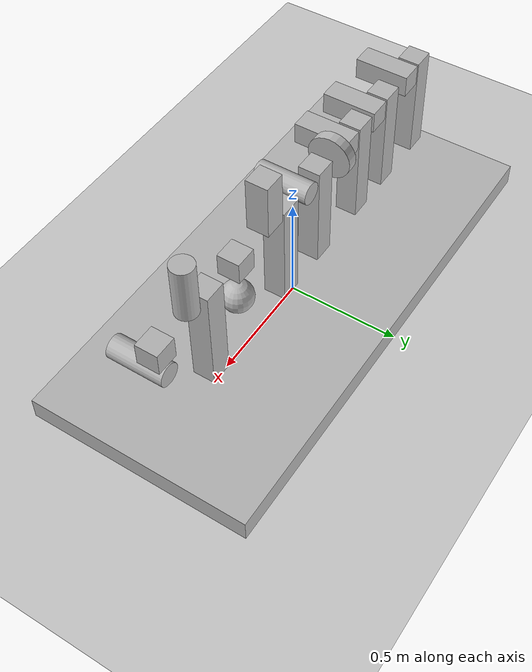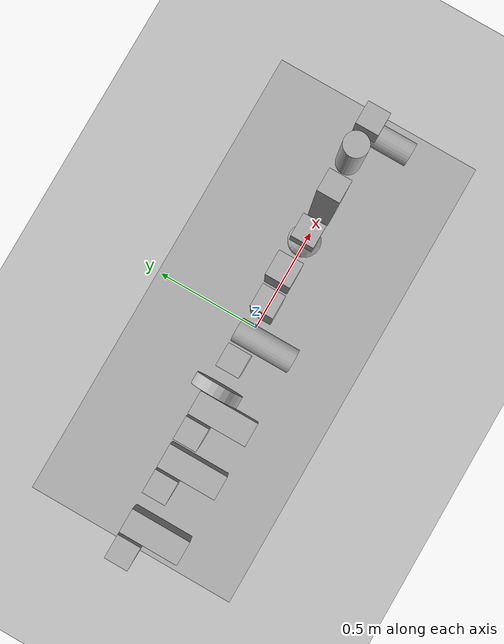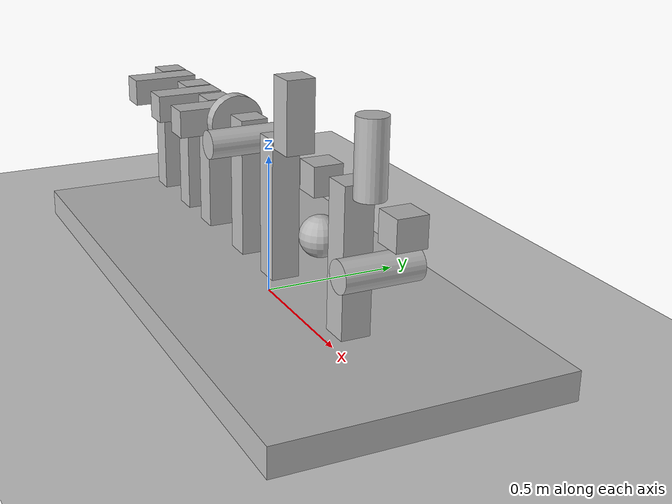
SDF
<?xml version="1.0" ?>
<sdf version="1.5">
  <world name="default">
    <!-- A global light source -->
    <include>
      <uri>model://sun</uri>
    </include>
    <!-- A ground plane -->
    <include>
      <uri>model://ground_plane</uri>
    </include>

    <!-- A testing model that includes the VT_sim sensor model -->
    <model name="Demo joint types">
      <include>
        <uri>model://demo_joint_types</uri>
      </include>

      <!-- Attach the plugin to this model -->
      <plugin name="VT_sim_control" filename="libget_joints_plugin.so"/>
    </model>

  </world>
</sdf>

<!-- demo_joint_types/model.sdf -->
<sdf version="1.6">
    <model name="demo_joint_types">
        <!-- A Heavy base keeps the joints from falling over -->
        <link name="heavy_base">
            <!-- position the base such that the bottom touches the floor -->
            <pose>0 0 0.05 0 0 0</pose>
            <inertial>
                <mass>100</mass> <!-- kg -->
                <inertia>
                    <!-- (mass / 12) * (y*y + z*z) -->
                    <ixx>8.4167</ixx>
                    <ixy>0</ixy>
                    <ixz>0</ixz>
                    <!-- (mass / 12) * (x*x + z*z) -->
                    <iyy>40.417</iyy>
                    <iyz>0</iyz>
                    <!-- (mass / 12) * (y*y + x*x) -->
                    <izz>48.667</izz>
                </inertia>
            </inertial>
            <!-- Same geometry as visual -->
            <collision name="heavy_base_collision">
                <geometry>
                    <box>
                        <size>2.2 1 0.1</size>
                    </box>
                </geometry>
            </collision>
            <!-- Same geometry as collision -->
            <visual name="heavy_base_visual">
                <geometry>
                    <box>
                        <size>2.2 1 0.1</size>
                    </box>
                </geometry>
                <material>
                    <script>
                        <uri>model://../model_source/models/demo_joint_types/materials/scripts</uri>
                        <uri>model://../model_source/models/demo_joint_types/materials/textures</uri>
                        <name>demo_joint_types/legend</name>
                    </script>
                </material>
            </visual>
        </link>

        <!-- ****************************************
             revolute joint demo
             **************************************** -->
        <link name="revolute_base">
            <!-- Put the bottom of the child on top of the parent
                 z = 0.5 * revolute_base_sz_z + heavy_base_sz_z
                 x = put it near revolute label on heavy base
                 -->
            <pose >-.72 0 0.35 0 0 0</pose>
            <inertial>
                <inertia>
                    <!-- (mass / 12) * (y*y + z*z) -->
                    <ixx>0.021667</ixx>
                    <ixy>0</ixy>
                    <ixz>0</ixz>
                    <!-- (mass / 12) * (x*x + z*z) -->
                    <iyy>0.021667</iyy>
                    <iyz>0</iyz>
                    <!-- (mass / 12) * (y*y + x*x) -->
                    <izz>0.0016667</izz>
                </inertia>
            </inertial>
            <!-- Same geometry as visual -->
            <collision name="revolute_base_collision">
                <geometry>
                    <box>
                        <size>0.1 0.1 0.5</size>
                    </box>
                </geometry>
            </collision>
            <!-- Same geometry as collision -->
            <visual name="revolute_base_visual">
                <geometry>
                    <box>
                        <size>0.1 0.1 0.5</size>
                    </box>
                </geometry>
                <material>
                    <script>
                        <uri>model://../model_source/models/demo_joint_types/materials/scripts</uri>
                        <uri>model://../model_source/models/demo_joint_types/materials/textures</uri>
                        <name>demo_joint_types/parent</name>
                    </script>
                </material>
            </visual>
        </link>

        <joint name="revolute_base_to_heavy_base" type="fixed">
            <parent>heavy_base</parent>
            <child>revolute_base</child>
        </joint>

        <link name="revolute_arm">
            <pose >-.61 -0.075 0.55 0 0 0</pose>
            <inertial>
                <inertia>
                    <!-- (mass / 12) * (y*y + z*z) -->
                    <ixx>0.0060417</ixx>
                    <ixy>0</ixy>
                    <ixz>0</ixz>
                    <!-- (mass / 12) * (x*x + z*z) -->
                    <iyy>0.0016667</iyy>
                    <iyz>0</iyz>
                    <!-- (mass / 12) * (y*y + x*x) -->
                    <izz>0.0060417</izz>
                </inertia>
            </inertial>
            <!-- Same geometry as visual -->
            <collision name="revolute_arm_collision">
                <geometry>
                    <box>
                        <size>0.1 0.25 0.1</size>
                    </box>
                </geometry>
            </collision>
            <!-- Same geometry as collision -->
            <visual name="revolute_arm_visual">
                <geometry>
                    <box>
                        <size>0.1 0.25 0.1</size>
                    </box>
                </geometry>
                <material>
                    <script>
                        <uri>model://../model_source/models/demo_joint_types/materials/scripts</uri>
                        <uri>model://../model_source/models/demo_joint_types/materials/textures</uri>
                        <name>demo_joint_types/child</name>
                    </script>
                </material>
            </visual>
        </link>

        <joint name="revolute_demo" type="revolute">
            <parent>revolute_base</parent>
            <child>revolute_arm</child>
            <axis>
                <xyz>1 0 0</xyz>
            </axis>
            <!-- Move the joint to the size a bit to be more like an arm
                 y = 0.5 * relative_arm_sz_y - fudge(0.05) -->
            <pose>0 0.075 0 0 0 0</pose>
        </joint>

        <!-- ****************************************
             gearbox joint demo
             **************************************** -->
        <link name="gearbox_base">
            <!-- Put the bottom of the child on top of the parent
                 z = 0.5 * gearbox_base_sz_z + heavy_base_sz_z
                 x = put it near gearbox label on heavy base
                 -->
            <pose >-.49 0 0.35 0 0 0</pose>
            <inertial>
                <inertia>
                    <!-- (mass / 12) * (y*y + z*z) -->
                    <ixx>0.021667</ixx>
                    <ixy>0</ixy>
                    <ixz>0</ixz>
                    <!-- (mass / 12) * (x*x + z*z) -->
                    <iyy>0.021667</iyy>
                    <iyz>0</iyz>
                    <!-- (mass / 12) * (y*y + x*x) -->
                    <izz>0.0016667</izz>
                </inertia>
            </inertial>
            <!-- Same geometry as visual -->
            <collision name="gearbox_base_collision">
                <geometry>
                    <box>
                        <size>0.1 0.1 0.5</size>
                    </box>
                </geometry>
            </collision>
            <!-- Same geometry as collision -->
            <visual name="gearbox_base_visual">
                <geometry>
                    <box>
                        <size>0.1 0.1 0.5</size>
                    </box>
                </geometry>
                <material>
                    <script>
                        <uri>model://../model_source/models/demo_joint_types/materials/scripts</uri>
                        <uri>model://../model_source/models/demo_joint_types/materials/textures</uri>
                        <name>demo_joint_types/reference</name>
                    </script>
                </material>
            </visual>
        </link>

        <joint name="gearbox_base_to_heavy_base" type="fixed">
            <parent>heavy_base</parent>
            <child>gearbox_base</child>
        </joint>

        <!-- The reference body for the gearbox -->
        <link name="gearbox_input">
            <pose >-.38 -0.075 0.55 0 0 0</pose>
            <inertial>
                <inertia>
                    <!-- (mass / 12) * (y*y + z*z) -->
                    <ixx>0.0060417</ixx>
                    <ixy>0</ixy>
                    <ixz>0</ixz>
                    <!-- (mass / 12) * (x*x + z*z) -->
                    <iyy>0.0016667</iyy>
                    <iyz>0</iyz>
                    <!-- (mass / 12) * (y*y + x*x) -->
                    <izz>0.0060417</izz>
                </inertia>
            </inertial>
            <!-- Same geometry as visual -->
            <collision name="gearbox_input_collision">
                <geometry>
                    <box>
                        <size>0.1 0.25 0.1</size>
                    </box>
                </geometry>
            </collision>
            <!-- Same geometry as collision -->
            <visual name="gearbox_input_visual">
                <geometry>
                    <box>
                        <size>0.1 0.25 0.1</size>
                    </box>
                </geometry>
                <material>
                    <script>
                        <uri>model://../model_source/models/demo_joint_types/materials/scripts</uri>
                        <uri>model://../model_source/models/demo_joint_types/materials/textures</uri>
                        <name>demo_joint_types/parent</name>
                    </script>
                </material>
            </visual>
        </link>
        <!-- The output of the gearbox is a free spinning cylinder -->
        <link name="gearbox_output">
            <gravity>0</gravity>
            <pose >-.3 0.0 0.55 0 1.5708 0</pose>
            <inertial>
                <mass>0.1</mass> <!-- kg -->
                <inertia>
                    <!-- (mass / 12) * (3 * radius * radius + length * length) -->
                    <ixx>0.00027083</ixx>
                    <ixy>0</ixy>
                    <ixz>0</ixz>
                    <!-- (mass / 12) * (3 * radius * radius + length * length) -->
                    <iyy>0.00027083</iyy>
                    <iyz>0</iyz>
                    <!-- mass * radius * radius * 0.5 -->
                    <izz>0.0005</izz>
                </inertia>
            </inertial>
            <!-- Same geometry as visual -->
            <collision name="gearbox_output_collision">
                <geometry>
                    <cylinder>
                        <radius>0.1</radius>
                        <length>0.05</length>
                    </cylinder>
                </geometry>
            </collision>
            <!-- Same geometry as collision -->
            <visual name="gearbox_output_visual">
                <geometry>
                    <cylinder>
                        <radius>0.1</radius>
                        <length>0.05</length>
                    </cylinder>
                </geometry>
                <material>
                    <script>
                        <uri>model://../model_source/models/demo_joint_types/materials/scripts</uri>
                        <uri>model://../model_source/models/demo_joint_types/materials/textures</uri>
                        <name>demo_joint_types/child</name>
                    </script>
                </material>
            </visual>
        </link>

        <!-- Gearbox links revolute joints, so create a couple revolute joints -->
        <joint name="gearbox_input_joint" type="revolute">
            <parent>gearbox_base</parent>
            <child>gearbox_input</child>
            <axis>
                <xyz>1 0 0</xyz>
            </axis>
            <pose>0 0.075 0 0 0 0</pose>
        </joint>
        <joint name="gearbox_output_joint" type="revolute">
            <parent>gearbox_base</parent>
            <child>gearbox_output</child>
            <axis>
                <xyz>0 0 1</xyz>
            </axis>
            <pose>0 0 0 0 0 0</pose>
        </joint>
        <joint name="gearbox_demo" type="gearbox">
            <parent>gearbox_input</parent>
            <child>gearbox_output</child>
            <gearbox_reference_body>gearbox_base</gearbox_reference_body>
            <gearbox_ratio>5</gearbox_ratio>
            <!-- input axis (relative to child) -->
            <axis>
                <xyz>0 0 1</xyz>
            </axis>
            <!-- output axis (relative to child) -->
            <axis2>
                <xyz>0 0 1</xyz>
            </axis2>
        </joint>

        <!-- ****************************************
             revolute2 joint demo
             **************************************** -->
        <link name="revolute2_base">
            <!-- Put the bottom of the child on top of the parent-->
            <pose >-.17 0 0.35 0 0 0</pose>
            <inertial>
                <inertia>
                    <!-- (mass / 12) * (y*y + z*z) -->
                    <ixx>0.021667</ixx>
                    <ixy>0</ixy>
                    <ixz>0</ixz>
                    <!-- (mass / 12) * (x*x + z*z) -->
                    <iyy>0.021667</iyy>
                    <iyz>0</iyz>
                    <!-- (mass / 12) * (y*y + x*x) -->
                    <izz>0.0016667</izz>
                </inertia>
            </inertial>
            <!-- Same geometry as visual -->
            <collision name="revolute2_base_collision">
                <geometry>
                    <box>
                        <size>0.1 0.1 0.5</size>
                    </box>
                </geometry>
            </collision>
            <!-- Same geometry as collision -->
            <visual name="revolute2_base_visual">
                <geometry>
                    <box>
                        <size>0.1 0.1 0.5</size>
                    </box>
                </geometry>
                <material>
                    <script>
                        <uri>model://../model_source/models/demo_joint_types/materials/scripts</uri>
                        <uri>model://../model_source/models/demo_joint_types/materials/textures</uri>
                        <name>demo_joint_types/parent</name>
                    </script>
                </material>
            </visual>
        </link>

        <joint name="revolute2_base_to_heavy_base" type="fixed">
            <parent>heavy_base</parent>
            <child>revolute2_base</child>
        </joint>

        <link name="revolute2_arm">
            <!-- Put the arm near the top of the base
                 -->
            <pose >-.06 -0.075 0.55 1.5708 0 0</pose>
            <inertial>
                <inertia>
                    <!-- (mass / 12) * (3 * radius * radius + length * length) -->
                    <ixx>0.0058333</ixx>
                    <ixy>0</ixy>
                    <ixz>0</ixz>
                    <!-- (mass / 12) * (3 * radius * radius + length * length) -->
                    <iyy>0.0058333</iyy>
                    <iyz>0</iyz>
                    <!-- mass * radius * radius * 0.5 -->
                    <izz>0.00125</izz>
                </inertia>
                <!-- offset interia as a trick to get movement from gravity -->
                <pose >-.1 -0.1 0.1 0 0 0</pose>
            </inertial>
            <!-- Same geometry as visual -->
            <collision name="revolute2_arm_collision">
                <geometry>
                    <cylinder>
                        <radius>0.05</radius>
                        <length>0.25</length>
                    </cylinder>
                </geometry>
            </collision>
            <!-- Same geometry as collision -->
            <visual name="revolute2_arm_visual">
                <geometry>
                    <cylinder>
                        <radius>0.05</radius>
                        <length>0.25</length>
                    </cylinder>
                </geometry>
                <material>
                    <script>
                        <uri>model://../model_source/models/demo_joint_types/materials/scripts</uri>
                        <uri>model://../model_source/models/demo_joint_types/materials/textures</uri>
                        <name>demo_joint_types/child</name>
                    </script>
                </material>
            </visual>
        </link>

        <joint name="revolute2_demo" type="revolute2">
            <parent>revolute2_base</parent>
            <child>revolute2_arm</child>
            <axis>
                <xyz>1 0 0</xyz>
            </axis>
            <axis2>
                <xyz>0 1 0</xyz>
            </axis2>
            <pose>0 0 -0.075  0 0 0</pose>
        </joint>
        <!-- ****************************************
             prismatic joint demo
             **************************************** -->
        <link name="prismatic_base">
            <!-- Put the bottom of base on top of the heavy base -->
            <pose >0.09 0 0.35 0 0 0</pose>
            <inertial>
                <inertia>
                    <!-- (mass / 12) * (y*y + z*z) -->
                    <ixx>0.021667</ixx>
                    <ixy>0</ixy>
                    <ixz>0</ixz>
                    <!-- (mass / 12) * (x*x + z*z) -->
                    <iyy>0.021667</iyy>
                    <iyz>0</iyz>
                    <!-- (mass / 12) * (y*y + x*x) -->
                    <izz>0.0016667</izz>
                </inertia>
            </inertial>
            <!-- Same geometry as visual -->
            <collision name="prismatic_base_collision">
                <geometry>
                    <box>
                        <size>0.1 0.1 0.5</size>
                    </box>
                </geometry>
            </collision>
            <!-- Same geometry as collision -->
            <visual name="prismatic_base_visual">
                <geometry>
                    <box>
                        <size>0.1 0.1 0.5</size>
                    </box>
                </geometry>
                <material>
                    <script>
                        <uri>model://../model_source/models/demo_joint_types/materials/scripts</uri>
                        <uri>model://../model_source/models/demo_joint_types/materials/textures</uri>
                        <name>demo_joint_types/parent</name>
                    </script>
                </material>
            </visual>
        </link>

        <joint name="prismatic_base_to_heavy_base" type="fixed">
            <parent>heavy_base</parent>
            <child>prismatic_base</child>
        </joint>

        <link name="prismatic_slide">
            <!-- Put the slide near the top of the base -->
            <pose >0.2 0 0.70 0 0 0</pose>
            <inertial>
                <inertia>
                    <!-- (mass / 12) * (y*y + z*z) -->
                    <ixx>0.0060417</ixx>
                    <ixy>0</ixy>
                    <ixz>0</ixz>
                    <!-- (mass / 12) * (x*x + z*z) -->
                    <iyy>0.0060417</iyy>
                    <iyz>0</iyz>
                    <!-- (mass / 12) * (y*y + x*x) -->
                    <izz>0.0016667</izz>
                </inertia>
            </inertial>
            <!-- Same geometry as visual -->
            <collision name="prismatic_slide_collision">
                <geometry>
                    <box>
                        <size>0.1 0.1 0.25</size>
                    </box>
                </geometry>
            </collision>
            <!-- Same geometry as collision -->
            <visual name="prismatic_slide_visual">
                <geometry>
                    <box>
                        <size>0.1 0.1 0.25</size>
                    </box>
                </geometry>
                <material>
                    <script>
                        <uri>model://../model_source/models/demo_joint_types/materials/scripts</uri>
                        <uri>model://../model_source/models/demo_joint_types/materials/textures</uri>
                        <name>demo_joint_types/child</name>
                    </script>
                </material>
            </visual>
        </link>

        <joint name="prismatic_demo" type="prismatic">
            <parent>prismatic_base</parent>
            <child>prismatic_slide</child>
            <axis>
                <xyz>0 0 1</xyz>
                <!-- Make it springy to keep the demo moving -->
                <limit>
                    <lower>-0.25</lower>
                    <upper>0.25</upper>
                </limit>
                <dynamics>
                    <spring_stiffness>100</spring_stiffness>
                </dynamics>
            </axis>
        </joint>
        <!-- ****************************************
             ball joint demo
             **************************************** -->
        <link name="ball_socket">
            <!-- make the socket float in the sky -->
            <pose >0.4 0 0.55 0 0 0</pose>
            <inertial>
                <inertia>
                    <!-- (mass / 12) * (y*y + z*z) -->
                    <ixx>0.0016667</ixx>
                    <ixy>0</ixy>
                    <ixz>0</ixz>
                    <!-- (mass / 12) * (x*x + z*z) -->
                    <iyy>0.0016667</iyy>
                    <iyz>0</iyz>
                    <!-- (mass / 12) * (y*y + x*x) -->
                    <izz>0.0016667</izz>
                </inertia>
            </inertial>
            <!-- Same geometry as visual -->
            <collision name="ball_socket_collision">
                <geometry>
                    <box>
                        <size>0.1 0.1 0.1</size>
                    </box>
                </geometry>
            </collision>
            <!-- Same geometry as collision -->
            <visual name="ball_socket_visual">
                <geometry>
                    <box>
                        <size>0.1 0.1 0.1</size>
                    </box>
                </geometry>
                <material>
                    <script>
                        <uri>model://../model_source/models/demo_joint_types/materials/scripts</uri>
                        <uri>model://../model_source/models/demo_joint_types/materials/textures</uri>
                        <name>demo_joint_types/parent</name>
                    </script>
                </material>
            </visual>
        </link>

        <joint name="ball_socket_to_heavy_base" type="fixed">
            <parent>heavy_base</parent>
            <child>ball_socket</child>
        </joint>

        <link name="ball_ball">
            <!-- Put the ball just under the socket -->
            <pose >0.4 0 0.35 0 0 0</pose>
            <inertial>
                <inertia>
                    <!-- (2 * mass * radius * radius) / 5 -->
                    <ixx>0.00196</ixx>
                    <!-- fudge it a bit to get movement on two axis from gravity alone -->
                    <ixy>0.001</ixy>
                    <ixz>0.001</ixz>
                    <!-- (2 * mass * radius * radius) / 5 -->
                    <iyy>0.00196</iyy>
                    <iyz>0.001</iyz>
                    <!-- (2 * mass * radius * radius) / 5 -->
                    <izz>0.00196</izz>
                </inertia>
                <!-- offset interia as a trick to get movement from gravity -->
                <pose >0.1 -0.1 0.1 0 0 0</pose>
            </inertial>
            <!-- Same geometry as visual -->
            <collision name="ball_ball_collision">
                <geometry>
                    <sphere>
                        <radius>0.07</radius>
                    </sphere>
                </geometry>
            </collision>
            <!-- Same geometry as collision -->
            <visual name="ball_ball_visual">
                <geometry>
                    <sphere>
                        <radius>0.07</radius>
                    </sphere>
                </geometry>
                <material>
                    <script>
                        <uri>model://../model_source/models/demo_joint_types/materials/scripts</uri>
                        <uri>model://../model_source/models/demo_joint_types/materials/textures</uri>
                        <name>demo_joint_types/child</name>
                    </script>
                </material>
            </visual>
        </link>

        <joint name="ball_demo" type="ball">
            <parent>ball_socket</parent>
            <child>ball_ball</child>
        </joint>

        <!-- ****************************************
             screw joint demo
             **************************************** -->
        <link name="screw_base">
            <!-- Put the bottom of base on top of the heavy base -->
            <pose >0.6 0 0.35 0 0 0</pose>
            <inertial>
                <inertia>
                    <!-- (mass / 12) * (y*y + z*z) -->
                    <ixx>0.021667</ixx>
                    <ixy>0</ixy>
                    <ixz>0</ixz>
                    <!-- (mass / 12) * (x*x + z*z) -->
                    <iyy>0.021667</iyy>
                    <iyz>0</iyz>
                    <!-- (mass / 12) * (y*y + x*x) -->
                    <izz>0.0016667</izz>
                </inertia>
            </inertial>
            <!-- Same geometry as visual -->
            <collision name="screw_base_collision">
                <geometry>
                    <box>
                        <size>0.1 0.1 0.5</size>
                    </box>
                </geometry>
            </collision>
            <!-- Same geometry as collision -->
            <visual name="screw_base_visual">
                <geometry>
                    <box>
                        <size>0.1 0.1 0.5</size>
                    </box>
                </geometry>
                <material>
                    <script>
                        <uri>model://../model_source/models/demo_joint_types/materials/scripts</uri>
                        <uri>model://../model_source/models/demo_joint_types/materials/textures</uri>
                        <name>demo_joint_types/parent</name>
                    </script>
                </material>
            </visual>
        </link>

        <joint name="screw_base_to_heavy_base" type="fixed">
            <parent>heavy_base</parent>
            <child>screw_base</child>
        </joint>

        <link name="screw_thread">
            <!-- Put the thread near the top of the base -->
            <pose >0.71 0 0.70 0 0 0</pose>
            <inertial>
                <inertia>
                    <!-- (mass / 12) * (3 * radius * radius + length * length) -->
                    <ixx>0.0058333</ixx>
                    <ixy>0</ixy>
                    <ixz>0</ixz>
                    <!-- (mass / 12) * (3 * radius * radius + length * length) -->
                    <iyy>0.0058333</iyy>
                    <iyz>0</iyz>
                    <!-- mass * radius * radius * 0.5 -->
                    <izz>0.00125</izz>
                </inertia>
            </inertial>
            <!-- Same geometry as visual -->
            <collision name="screw_thread_collision">
                <geometry>
                    <cylinder>
                        <radius>0.05</radius>
                        <length>0.25</length>
                    </cylinder>
                </geometry>
            </collision>
            <!-- Same geometry as collision -->
            <visual name="screw_thread_visual">
                <geometry>
                    <cylinder>
                        <radius>0.05</radius>
                        <length>0.25</length>
                    </cylinder>
                </geometry>
                <material>
                    <script>
                        <uri>model://../model_source/models/demo_joint_types/materials/scripts</uri>
                        <uri>model://../model_source/models/demo_joint_types/materials/textures</uri>
                        <name>demo_joint_types/child</name>
                    </script>
                </material>
            </visual>
        </link>

        <joint name="screw_thread" type="screw">
            <parent>screw_base</parent>
            <child>screw_thread</child>
            <thread_pitch>20</thread_pitch>
            <axis>
                <xyz>0 0 1</xyz>
                <!-- Make it springy to keep the demo moving -->
                <dynamics>
                    <spring_stiffness>0.2</spring_stiffness>
                </dynamics>
            </axis>
        </joint>

        <!-- ****************************************
             universal joint demo
             **************************************** -->
        <link name="universal_base">
            <!-- make the base float in the sky -->
            <pose >0.9 0 0.55 0 0 0</pose>
            <inertial>
                <inertia>
                    <!-- (mass / 12) * (y*y + z*z) -->
                    <ixx>0.0016667</ixx>
                    <ixy>0</ixy>
                    <ixz>0</ixz>
                    <!-- (mass / 12) * (x*x + z*z) -->
                    <iyy>0.0016667</iyy>
                    <iyz>0</iyz>
                    <!-- (mass / 12) * (y*y + x*x) -->
                    <izz>0.0016667</izz>
                </inertia>
            </inertial>
            <!-- Same geometry as visual -->
            <collision name="universal_base_collision">
                <geometry>
                    <box>
                        <size>0.1 0.1 0.1</size>
                    </box>
                </geometry>
            </collision>
            <!-- Same geometry as collision -->
            <visual name="universal_base_visual">
                <geometry>
                    <box>
                        <size>0.1 0.1 0.1</size>
                    </box>
                </geometry>
                <material>
                    <script>
                        <uri>model://../model_source/models/demo_joint_types/materials/scripts</uri>
                        <uri>model://../model_source/models/demo_joint_types/materials/textures</uri>
                        <name>demo_joint_types/parent</name>
                    </script>
                </material>
            </visual>
        </link>

        <joint name="universal_base_to_heavy_base" type="fixed">
            <parent>heavy_base</parent>
            <child>universal_base</child>
        </joint>

        <link name="universal_shaft">
            <!-- Put the shaft just under the base -->
            <pose >0.9 -0.075 0.44 1.5708 0 0</pose>
            <inertial>
                <inertia>
                    <!-- (mass / 12) * (3 * radius * radius + length * length) -->
                    <ixx>0.0058333</ixx>
                    <ixy>0</ixy>
                    <ixz>0</ixz>
                    <!-- (mass / 12) * (3 * radius * radius + length * length) -->
                    <iyy>0.0058333</iyy>
                    <iyz>0</iyz>
                    <!-- mass * radius * radius * 0.5 -->
                    <izz>0.00125</izz>
                </inertia>
                <!-- offset interia as a trick to get movement from gravity -->
                <pose >-0.02 0.02 0 0 0 0</pose>
            </inertial>
            <!-- Same geometry as visual -->
            <collision name="universal_shaft_collision">
                <geometry>
                    <cylinder>
                        <radius>0.05</radius>
                        <length>0.25</length>
                    </cylinder>
                </geometry>
            </collision>
            <!-- Same geometry as collision -->
            <visual name="universal_shaft_visual">
                <geometry>
                    <cylinder>
                        <radius>0.05</radius>
                        <length>0.25</length>
                    </cylinder>
                </geometry>
                <material>
                    <script>
                        <uri>model://../model_source/models/demo_joint_types/materials/scripts</uri>
                        <uri>model://../model_source/models/demo_joint_types/materials/textures</uri>
                        <name>demo_joint_types/child</name>
                    </script>
                </material>
            </visual>
        </link>

        <joint name="universal_demo" type="universal">
            <parent>universal_base</parent>
            <child>universal_shaft</child>
            <pose>0 0 -0.075 0 0 0</pose>
        </joint>

        <!-- ****************************************
             fixed joint demo
             **************************************** -->
        <link name="fixed_base">
            <!-- Put the bottom of base on top of the heavy base -->
            <pose >-1 0 0.35 0 0 0</pose>
            <inertial>
                <inertia>
                    <!-- (mass / 12) * (y*y + z*z) -->
                    <ixx>0.021667</ixx>
                    <ixy>0</ixy>
                    <ixz>0</ixz>
                    <!-- (mass / 12) * (x*x + z*z) -->
                    <iyy>0.021667</iyy>
                    <iyz>0</iyz>
                    <!-- (mass / 12) * (y*y + x*x) -->
                    <izz>0.0016667</izz>
                </inertia>
            </inertial>
            <!-- Same geometry as visual -->
            <collision name="fixed_base_collision">
                <geometry>
                    <box>
                        <size>0.1 0.1 0.5</size>
                    </box>
                </geometry>
            </collision>
            <!-- Same geometry as collision -->
            <visual name="fixed_base_visual">
                <geometry>
                    <box>
                        <size>0.1 0.1 0.5</size>
                    </box>
                </geometry>
                <material>
                    <script>
                        <uri>model://../model_source/models/demo_joint_types/materials/scripts</uri>
                        <uri>model://../model_source/models/demo_joint_types/materials/textures</uri>
                        <name>demo_joint_types/parent</name>
                    </script>
                </material>
            </visual>
        </link>

        <link name="fixed_arm">
            <!-- Put the arm near the top of the base -->
            <pose >-.89 -0.075 0.55 0 0 0</pose>
            <inertial>
                <inertia>
                    <!-- (mass / 12) * (y*y + z*z) -->
                    <ixx>0.0060417</ixx>
                    <ixy>0</ixy>
                    <ixz>0</ixz>
                    <!-- (mass / 12) * (x*x + z*z) -->
                    <iyy>0.0016667</iyy>
                    <iyz>0</iyz>
                    <!-- (mass / 12) * (y*y + x*x) -->
                    <izz>0.0060417</izz>
                </inertia>
            </inertial>
            <!-- Same geometry as visual -->
            <collision name="fixed_arm_collision">
                <geometry>
                    <box>
                        <size>0.1 0.25 0.1</size>
                    </box>
                </geometry>
            </collision>
            <!-- Same geometry as collision -->
            <visual name="fixed_arm_visual">
                <geometry>
                    <box>
                        <size>0.1 0.25 0.1</size>
                    </box>
                </geometry>
                <material>
                    <script>
                        <uri>model://../model_source/models/demo_joint_types/materials/scripts</uri>
                        <uri>model://../model_source/models/demo_joint_types/materials/textures</uri>
                        <name>demo_joint_types/child</name>
                    </script>
                </material>
            </visual>
        </link>

        <joint name="fixed_base_to_heavy_base" type="fixed">
            <parent>heavy_base</parent>
            <child>fixed_base</child>
        </joint>

        <joint name="fixed_demo" type="fixed">
            <parent>fixed_base</parent>
            <child>fixed_arm</child>
        </joint>
    </model>
</sdf>
